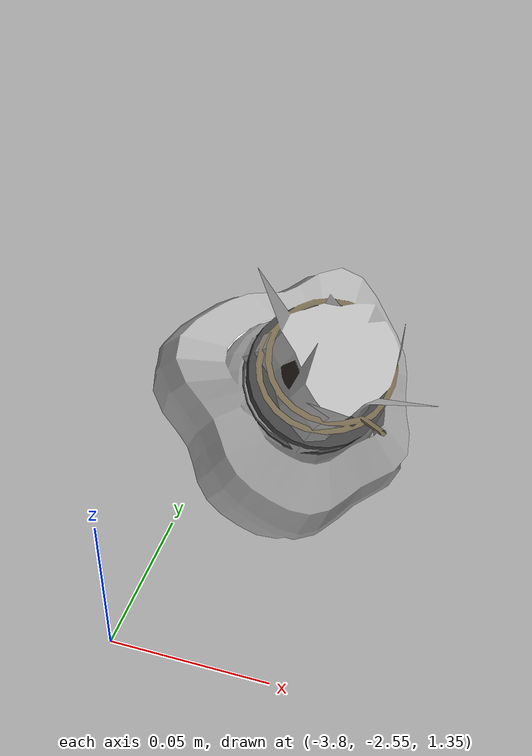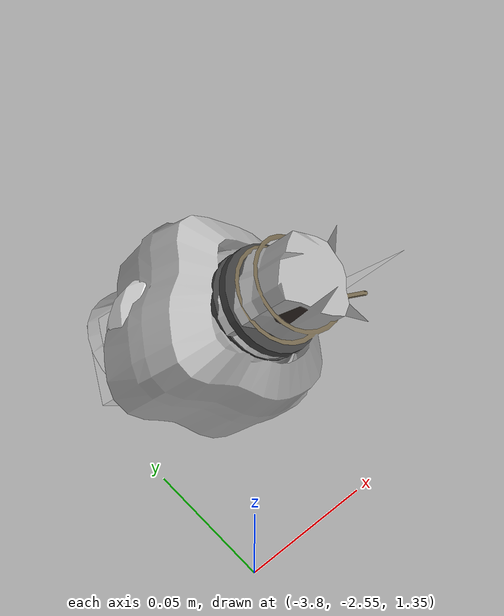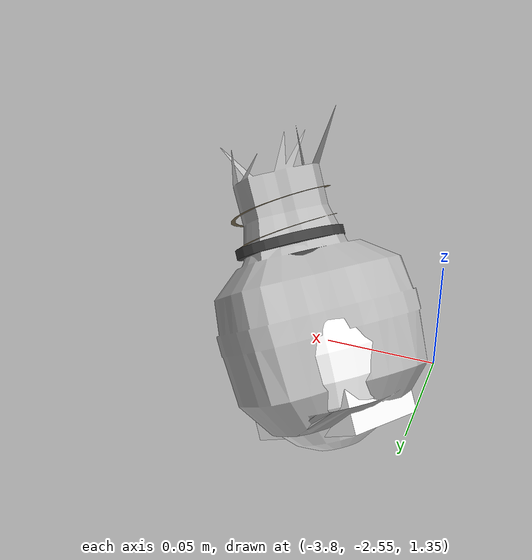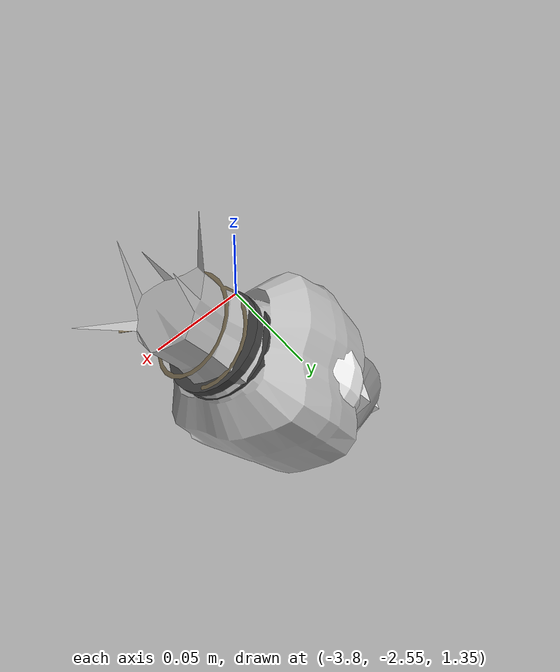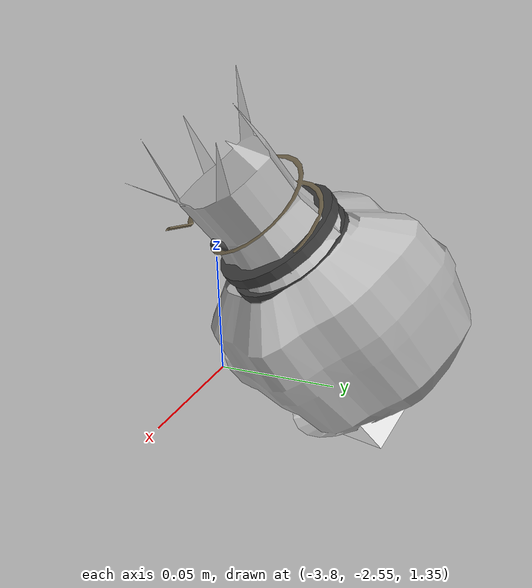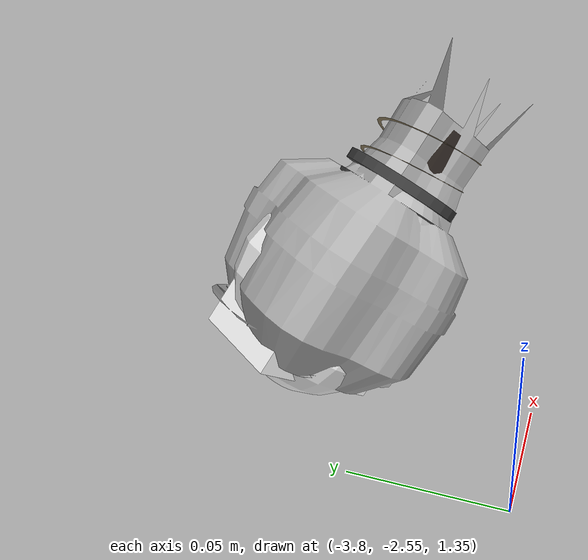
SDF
<sdf version="1.11">
 <world name="peach_orchard">
  <model name="ground">
   <static>true</static>
   <link name="link">
    <visual name="soil">
     <geometry><plane><normal>0 0 1</normal><size>32 22</size></plane></geometry>
     <material>
      <ambient>1 1 1 1</ambient>
      <diffuse>1 1 1 1</diffuse>
      <specular>0.1 0.1 0.1 1</specular>
      <pbr>
       <metal>
        <albedo_map>textures/soil_albedo.png</albedo_map>
        <normal_map type="tangent">textures/soil_normal.png</normal_map>
        <roughness>0.95</roughness>
        <metalness>0</metalness>
       </metal>
      </pbr>
     </material>
    </visual>
    <collision name="c_soil">
     <geometry><plane><normal>0 0 1</normal><size>32 22</size></plane></geometry>
    </collision>
   </link>
  </model>
  <model name="peach_tree_r1_t2_03">
   <pose>-3.78 -2.47155 1.37183 0 0.635176 -0.798951</pose>
   <static>true</static>
   <link name="bag">
    <visual name="bag_mesh">
     <pose>0 0 0.0476623 0 0 -0</pose>
     <geometry>
      <mesh><uri>model://peach_sim/meshes/bagged_peach.glb</uri><scale>0.9394 1.01604 1.08323</scale></mesh>
     </geometry>
    </visual>
    <visual name="body">
     <pose>0 0 0.0296623 0 0 0</pose>
     <geometry><ellipsoid><radii>0.0352275 0.0264169 0.0320353</radii></ellipsoid></geometry>
     <material>
      <ambient>1 1 1 1</ambient>
      <diffuse>1 1 1 1</diffuse>
      <specular>0.1 0.1 0.1 1</specular>
      <pbr>
       <metal>
        <albedo_map>textures/paper_bag_albedo.png</albedo_map>
        <normal_map type="tangent">textures/paper_bag_normal.png</normal_map>
        <roughness>0.72</roughness>
        <metalness>0</metalness>
       </metal>
      </pbr>
     </material>
    </visual>
    <visual name="bottom_fold">
     <pose>0 0 0.012 0 0 0.35</pose>
     <geometry><box><size>0.0546026 0.0303795 0.022</size></box></geometry>
     <material>
      <ambient>1 1 1 1</ambient>
      <diffuse>1 1 1 1</diffuse>
      <specular>0.1 0.1 0.1 1</specular>
      <pbr>
       <metal>
        <albedo_map>textures/paper_bag_albedo.png</albedo_map>
        <normal_map type="tangent">textures/paper_bag_normal.png</normal_map>
        <roughness>0.8</roughness>
        <metalness>0</metalness>
       </metal>
      </pbr>
     </material>
    </visual>
    <visual name="fruit">
     <pose>0 0 0.0201427 0 0 0</pose>
     <geometry><sphere><radius>0.0271884</radius></sphere></geometry>
     <material>
      <ambient>1 1 1 1</ambient>
      <diffuse>1 1 1 1</diffuse>
      <specular>0.1 0.1 0.1 1</specular>
      <pbr>
       <metal>
        <albedo_map>textures/fruit_skin_albedo.png</albedo_map>
        <normal_map type="tangent">textures/fruit_skin_normal.png</normal_map>
        <roughness>0.55</roughness>
        <metalness>0</metalness>
       </metal>
      </pbr>
     </material>
    </visual>
    <visual name="neck">
     <pose>0 0 0.0683246 0 0 0</pose>
     <geometry><cylinder><radius>0.013</radius><length>0.018</length></cylinder></geometry>
     <material>
      <ambient>1 1 1 1</ambient>
      <diffuse>1 1 1 1</diffuse>
      <specular>0.1 0.1 0.1 1</specular>
      <pbr>
       <metal>
        <albedo_map>textures/paper_bag_albedo.png</albedo_map>
        <normal_map type="tangent">textures/paper_bag_normal.png</normal_map>
        <roughness>0.75</roughness>
        <metalness>0</metalness>
       </metal>
      </pbr>
     </material>
    </visual>
    <visual name="gather">
     <pose>0 0 0.0493246 0 0 0</pose>
     <geometry><cylinder><radius>0.019</radius><length>0.02</length></cylinder></geometry>
     <material>
      <ambient>1 1 1 1</ambient>
      <diffuse>1 1 1 1</diffuse>
      <specular>0.1 0.1 0.1 1</specular>
      <pbr>
       <metal>
        <albedo_map>textures/paper_bag_albedo.png</albedo_map>
        <normal_map type="tangent">textures/paper_bag_normal.png</normal_map>
        <roughness>0.8</roughness>
        <metalness>0</metalness>
       </metal>
      </pbr>
     </material>
    </visual>
    <visual name="inner_paper">
     <pose>0 0 0.0733246 0 0 0</pose>
     <geometry><cylinder><radius>0.01</radius><length>0.008</length></cylinder></geometry>
     <material>
      <ambient>0.180392 0.14902 0.133333 1</ambient>
      <diffuse>0.180392 0.14902 0.133333 1</diffuse>
      <specular>0.1 0.1 0.1 1</specular>
     </material>
    </visual>
    <visual name="wire_0">
     <pose>0 0 0.0633246 0 0 0</pose>
     <geometry><cylinder><radius>0.0205</radius><length>0.0035</length></cylinder></geometry>
     <material>
      <ambient>0.25 0.25 0.25 1</ambient>
      <diffuse>0.25 0.25 0.25 1</diffuse>
      <specular>0.1 0.1 0.1 1</specular>
     </material>
    </visual>
    <visual name="wire_1">
     <pose>0 0 0.0703246 0 0 0</pose>
     <geometry><cylinder><radius>0.0205</radius><length>0.0035</length></cylinder></geometry>
     <material>
      <ambient>0.25 0.25 0.25 1</ambient>
      <diffuse>0.25 0.25 0.25 1</diffuse>
      <specular>0.1 0.1 0.1 1</specular>
     </material>
    </visual>
    <visual name="wire_tail">
     <pose>0.01 0 0.0713246 0 0.521618 0</pose>
     <geometry><cylinder><radius>0.0012</radius><length>0.026</length></cylinder></geometry>
     <material>
      <ambient>0.25 0.25 0.25 1</ambient>
      <diffuse>0.25 0.25 0.25 1</diffuse>
      <specular>0.1 0.1 0.1 1</specular>
     </material>
    </visual>
    <collision name="c_body">
     <pose>0 0 0.0296623 0 0 0</pose>
     <geometry><cylinder><radius>0.0352275</radius><length>0.0593246</length></cylinder></geometry>
    </collision>
   </link>
  </model>
 </world>
</sdf>
